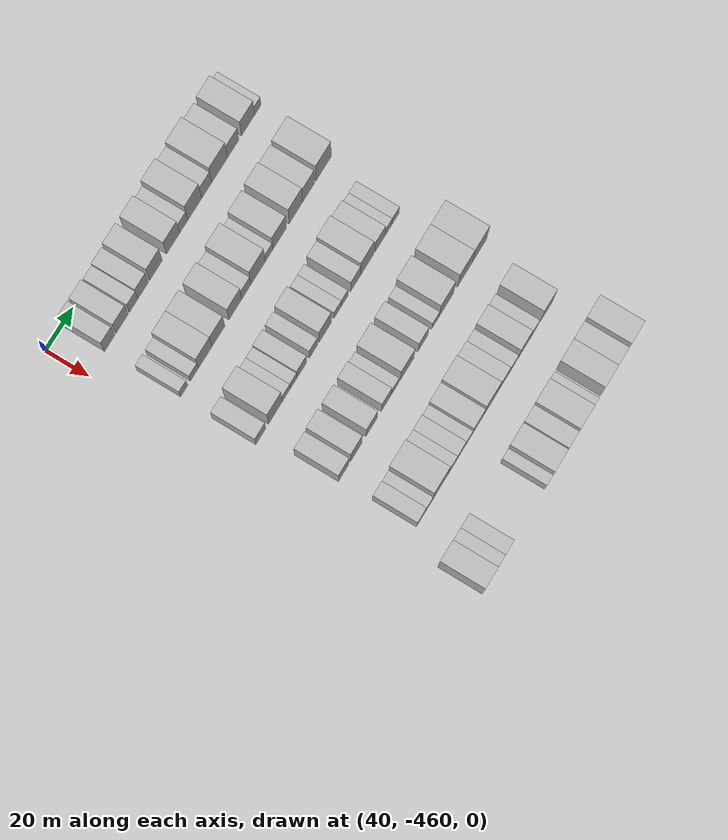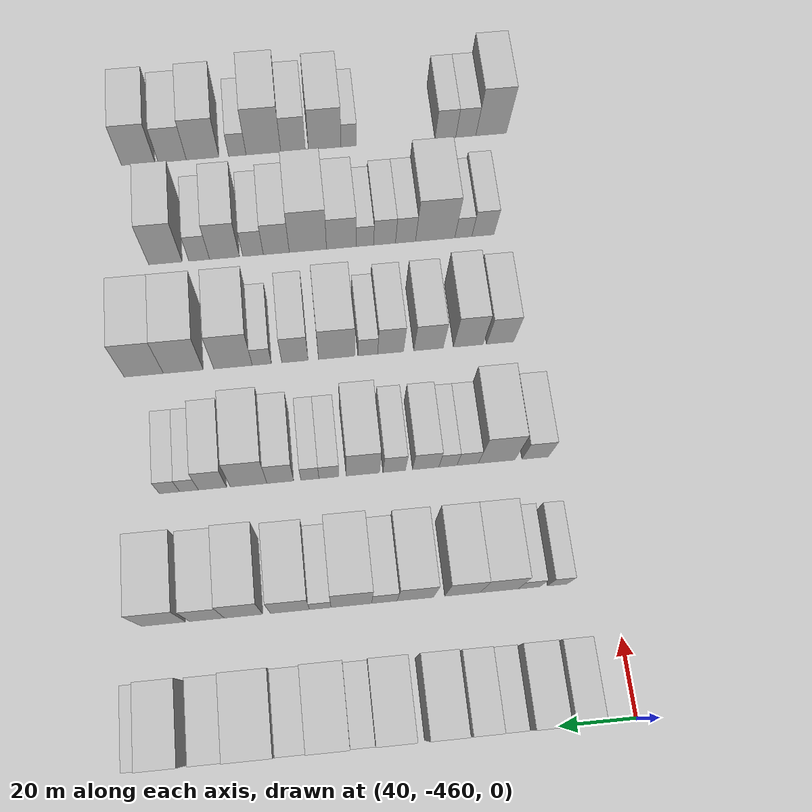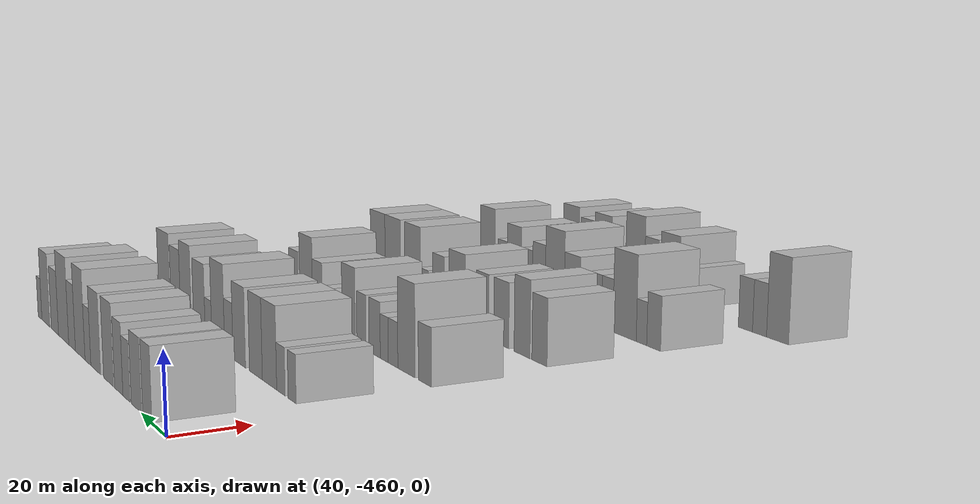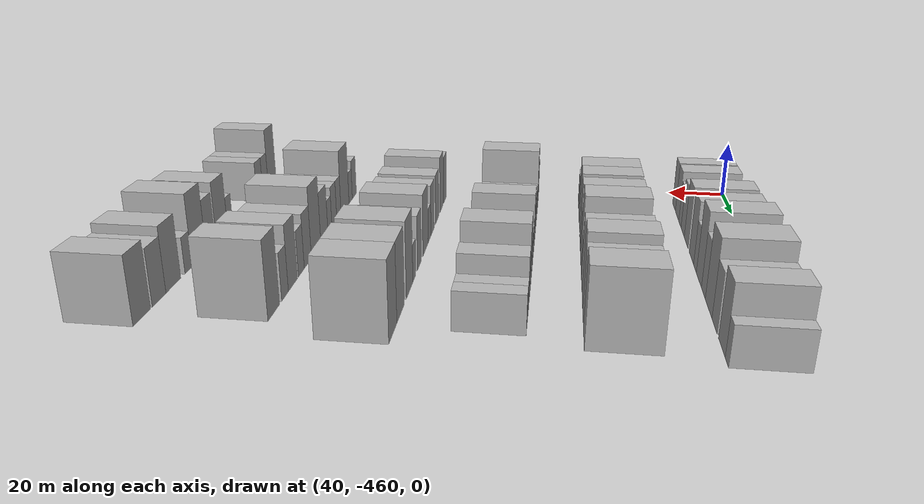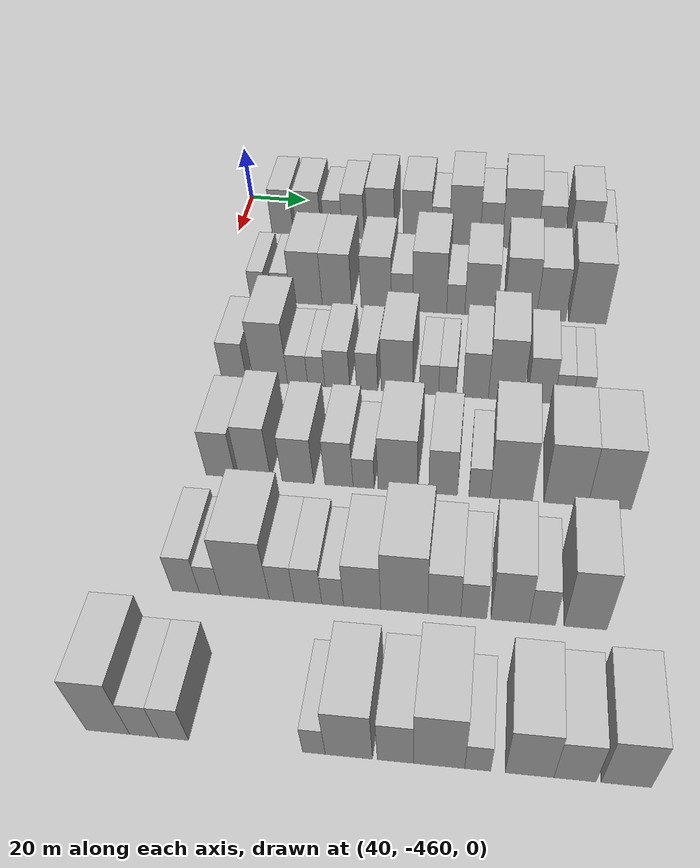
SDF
<sdf version="1.6">
 <world name="default">
  <model name="building_14">
   <static>1</static>
   <pose>50.0000 -444.6101 0 0.000000 0.000000 0.000000</pose>
   <link name="link">
    <pose>0 0 9.00 0 0 0</pose>
    <collision name="collision"><geometry><box><size>20.0000 7.5320 18.0000</size></box></geometry></collision>
    <visual name="visual">
     <cast_shadows>0</cast_shadows>
     <geometry><box><size>20.0000 7.5320 18.0000</size></box></geometry>
     <material>
      <script>
       <uri>model://HANNAS_wall/materials/scripts</uri>
       <uri>model://HANNAS_wall/materials/textures</uri>
       <name>vrc/HANNAS_wall</name>
      </script>
     </material>
    </visual>
   </link>
  </model>
  <model name="building_15">
   <static>1</static>
   <pose>50.0000 -435.4569 0 0.000000 0.000000 0.000000</pose>
   <link name="link">
    <pose>0 0 9.00 0 0 0</pose>
    <collision name="collision"><geometry><box><size>20.0000 8.7743 18.0000</size></box></geometry></collision>
    <visual name="visual">
     <cast_shadows>0</cast_shadows>
     <geometry><box><size>20.0000 8.7743 18.0000</size></box></geometry>
     <material>
      <script>
       <uri>model://HANNAS_wall/materials/scripts</uri>
       <uri>model://HANNAS_wall/materials/textures</uri>
       <name>vrc/HANNAS_wall</name>
      </script>
     </material>
    </visual>
   </link>
  </model>
  <model name="building_16">
   <static>1</static>
   <pose>50.0000 -426.8989 0 0.000000 0.000000 0.000000</pose>
   <link name="link">
    <pose>0 0 7.50 0 0 0</pose>
    <collision name="collision"><geometry><box><size>20.0000 6.3419 15.0000</size></box></geometry></collision>
    <visual name="visual">
     <cast_shadows>0</cast_shadows>
     <geometry><box><size>20.0000 6.3419 15.0000</size></box></geometry>
     <material>
      <script>
       <uri>model://HANNAS_wall/materials/scripts</uri>
       <uri>model://HANNAS_wall/materials/textures</uri>
       <name>vrc/HANNAS_wall</name>
      </script>
     </material>
    </visual>
   </link>
  </model>
  <model name="building_17">
   <static>1</static>
   <pose>50.0000 -419.9059 0 0.000000 0.000000 0.000000</pose>
   <link name="link">
    <pose>0 0 9.00 0 0 0</pose>
    <collision name="collision"><geometry><box><size>20.0000 7.6440 18.0000</size></box></geometry></collision>
    <visual name="visual">
     <cast_shadows>0</cast_shadows>
     <geometry><box><size>20.0000 7.6440 18.0000</size></box></geometry>
     <material>
      <script>
       <uri>model://HANNAS_wall/materials/scripts</uri>
       <uri>model://HANNAS_wall/materials/textures</uri>
       <name>vrc/HANNAS_wall</name>
      </script>
     </material>
    </visual>
   </link>
  </model>
  <model name="building_18">
   <static>1</static>
   <pose>50.0000 -410.3458 0 0.000000 0.000000 0.000000</pose>
   <link name="link">
    <pose>0 0 10.50 0 0 0</pose>
    <collision name="collision"><geometry><box><size>20.0000 9.4763 21.0000</size></box></geometry></collision>
    <visual name="visual">
     <cast_shadows>0</cast_shadows>
     <geometry><box><size>20.0000 9.4763 21.0000</size></box></geometry>
     <material>
      <script>
       <uri>model://HANNAS_wall/materials/scripts</uri>
       <uri>model://HANNAS_wall/materials/textures</uri>
       <name>vrc/HANNAS_wall</name>
      </script>
     </material>
    </visual>
   </link>
  </model>
  <model name="building_19">
   <static>1</static>
   <pose>50.0000 -397.7008 0 0.000000 0.000000 0.000000</pose>
   <link name="link">
    <pose>0 0 10.50 0 0 0</pose>
    <collision name="collision"><geometry><box><size>20.0000 9.8136 21.0000</size></box></geometry></collision>
    <visual name="visual">
     <cast_shadows>0</cast_shadows>
     <geometry><box><size>20.0000 9.8136 21.0000</size></box></geometry>
     <material>
      <script>
       <uri>model://HANNAS_wall/materials/scripts</uri>
       <uri>model://HANNAS_wall/materials/textures</uri>
       <name>vrc/HANNAS_wall</name>
      </script>
     </material>
    </visual>
   </link>
  </model>
  <model name="building_20">
   <static>1</static>
   <pose>50.0000 -389.7556 0 0.000000 0.000000 0.000000</pose>
   <link name="link">
    <pose>0 0 7.50 0 0 0</pose>
    <collision name="collision"><geometry><box><size>20.0000 6.0767 15.0000</size></box></geometry></collision>
    <visual name="visual">
     <cast_shadows>0</cast_shadows>
     <geometry><box><size>20.0000 6.0767 15.0000</size></box></geometry>
     <material>
      <script>
       <uri>model://HANNAS_wall/materials/scripts</uri>
       <uri>model://HANNAS_wall/materials/textures</uri>
       <name>vrc/HANNAS_wall</name>
      </script>
     </material>
    </visual>
   </link>
  </model>
  <model name="building_21">
   <static>1</static>
   <pose>50.0000 -381.5165 0 0.000000 0.000000 0.000000</pose>
   <link name="link">
    <pose>0 0 12.00 0 0 0</pose>
    <collision name="collision"><geometry><box><size>20.0000 10.4015 24.0000</size></box></geometry></collision>
    <visual name="visual">
     <cast_shadows>0</cast_shadows>
     <geometry><box><size>20.0000 10.4015 24.0000</size></box></geometry>
     <material>
      <script>
       <uri>model://HANNAS_wall/materials/scripts</uri>
       <uri>model://HANNAS_wall/materials/textures</uri>
       <name>vrc/HANNAS_wall</name>
      </script>
     </material>
    </visual>
   </link>
  </model>
  <model name="building_22">
   <static>1</static>
   <pose>50.0000 -372.5683 0 0.000000 0.000000 0.000000</pose>
   <link name="link">
    <pose>0 0 9.00 0 0 0</pose>
    <collision name="collision"><geometry><box><size>20.0000 7.4949 18.0000</size></box></geometry></collision>
    <visual name="visual">
     <cast_shadows>0</cast_shadows>
     <geometry><box><size>20.0000 7.4949 18.0000</size></box></geometry>
     <material>
      <script>
       <uri>model://HANNAS_wall/materials/scripts</uri>
       <uri>model://HANNAS_wall/materials/textures</uri>
       <name>vrc/HANNAS_wall</name>
      </script>
     </material>
    </visual>
   </link>
  </model>
  <model name="building_23">
   <static>1</static>
   <pose>50.0000 -362.8879 0 0.000000 0.000000 0.000000</pose>
   <link name="link">
    <pose>0 0 12.00 0 0 0</pose>
    <collision name="collision"><geometry><box><size>20.0000 11.8658 24.0000</size></box></geometry></collision>
    <visual name="visual">
     <cast_shadows>0</cast_shadows>
     <geometry><box><size>20.0000 11.8658 24.0000</size></box></geometry>
     <material>
      <script>
       <uri>model://HANNAS_wall/materials/scripts</uri>
       <uri>model://HANNAS_wall/materials/textures</uri>
       <name>vrc/HANNAS_wall</name>
      </script>
     </material>
    </visual>
   </link>
  </model>
  <model name="building_24">
   <static>1</static>
   <pose>50.0000 -352.6305 0 0.000000 0.000000 0.000000</pose>
   <link name="link">
    <pose>0 0 9.00 0 0 0</pose>
    <collision name="collision"><geometry><box><size>20.0000 8.6490 18.0000</size></box></geometry></collision>
    <visual name="visual">
     <cast_shadows>0</cast_shadows>
     <geometry><box><size>20.0000 8.6490 18.0000</size></box></geometry>
     <material>
      <script>
       <uri>model://HANNAS_wall/materials/scripts</uri>
       <uri>model://HANNAS_wall/materials/textures</uri>
       <name>vrc/HANNAS_wall</name>
      </script>
     </material>
    </visual>
   </link>
  </model>
  <model name="building_25">
   <static>1</static>
   <pose>50.0000 -341.3067 0 0.000000 0.000000 0.000000</pose>
   <link name="link">
    <pose>0 0 10.50 0 0 0</pose>
    <collision name="collision"><geometry><box><size>20.0000 9.9986 21.0000</size></box></geometry></collision>
    <visual name="visual">
     <cast_shadows>0</cast_shadows>
     <geometry><box><size>20.0000 9.9986 21.0000</size></box></geometry>
     <material>
      <script>
       <uri>model://HANNAS_wall/materials/scripts</uri>
       <uri>model://HANNAS_wall/materials/textures</uri>
       <name>vrc/HANNAS_wall</name>
      </script>
     </material>
    </visual>
   </link>
  </model>
  <model name="building_26">
   <static>1</static>
   <pose>50.0000 -333.8798 0 0.000000 0.000000 0.000000</pose>
   <link name="link">
    <pose>0 0 6.00 0 0 0</pose>
    <collision name="collision"><geometry><box><size>20.0000 4.8552 12.0000</size></box></geometry></collision>
    <visual name="visual">
     <cast_shadows>0</cast_shadows>
     <geometry><box><size>20.0000 4.8552 12.0000</size></box></geometry>
     <material>
      <script>
       <uri>model://HANNAS_wall/materials/scripts</uri>
       <uri>model://HANNAS_wall/materials/textures</uri>
       <name>vrc/HANNAS_wall</name>
      </script>
     </material>
    </visual>
   </link>
  </model>
  <model name="building_140">
   <static>1</static>
   <pose>85.0000 -445.5207 0 0.000000 0.000000 0.000000</pose>
   <link name="link">
    <pose>0 0 6.00 0 0 0</pose>
    <collision name="collision"><geometry><box><size>20.0000 5.2897 12.0000</size></box></geometry></collision>
    <visual name="visual">
     <cast_shadows>0</cast_shadows>
     <geometry><box><size>20.0000 5.2897 12.0000</size></box></geometry>
     <material>
      <script>
       <uri>model://HANNAS_wall/materials/scripts</uri>
       <uri>model://HANNAS_wall/materials/textures</uri>
       <name>vrc/HANNAS_wall</name>
      </script>
     </material>
    </visual>
   </link>
  </model>
  <model name="building_141">
   <static>1</static>
   <pose>85.0000 -437.9712 0 0.000000 0.000000 0.000000</pose>
   <link name="link">
    <pose>0 0 6.00 0 0 0</pose>
    <collision name="collision"><geometry><box><size>20.0000 5.8092 12.0000</size></box></geometry></collision>
    <visual name="visual">
     <cast_shadows>0</cast_shadows>
     <geometry><box><size>20.0000 5.8092 12.0000</size></box></geometry>
     <material>
      <script>
       <uri>model://HANNAS_wall/materials/scripts</uri>
       <uri>model://HANNAS_wall/materials/textures</uri>
       <name>vrc/HANNAS_wall</name>
      </script>
     </material>
    </visual>
   </link>
  </model>
  <model name="building_142">
   <static>1</static>
   <pose>85.0000 -429.9765 0 0.000000 0.000000 0.000000</pose>
   <link name="link">
    <pose>0 0 10.50 0 0 0</pose>
    <collision name="collision"><geometry><box><size>20.0000 10.1802 21.0000</size></box></geometry></collision>
    <visual name="visual">
     <cast_shadows>0</cast_shadows>
     <geometry><box><size>20.0000 10.1802 21.0000</size></box></geometry>
     <material>
      <script>
       <uri>model://HANNAS_wall/materials/scripts</uri>
       <uri>model://HANNAS_wall/materials/textures</uri>
       <name>vrc/HANNAS_wall</name>
      </script>
     </material>
    </visual>
   </link>
  </model>
  <model name="building_143">
   <static>1</static>
   <pose>85.0000 -420.0992 0 0.000000 0.000000 0.000000</pose>
   <link name="link">
    <pose>0 0 10.50 0 0 0</pose>
    <collision name="collision"><geometry><box><size>20.0000 9.5745 21.0000</size></box></geometry></collision>
    <visual name="visual">
     <cast_shadows>0</cast_shadows>
     <geometry><box><size>20.0000 9.5745 21.0000</size></box></geometry>
     <material>
      <script>
       <uri>model://HANNAS_wall/materials/scripts</uri>
       <uri>model://HANNAS_wall/materials/textures</uri>
       <name>vrc/HANNAS_wall</name>
      </script>
     </material>
    </visual>
   </link>
  </model>
  <model name="building_144">
   <static>1</static>
   <pose>85.0000 -407.4506 0 0.000000 0.000000 0.000000</pose>
   <link name="link">
    <pose>0 0 10.50 0 0 0</pose>
    <collision name="collision"><geometry><box><size>20.0000 9.7227 21.0000</size></box></geometry></collision>
    <visual name="visual">
     <cast_shadows>0</cast_shadows>
     <geometry><box><size>20.0000 9.7227 21.0000</size></box></geometry>
     <material>
      <script>
       <uri>model://HANNAS_wall/materials/scripts</uri>
       <uri>model://HANNAS_wall/materials/textures</uri>
       <name>vrc/HANNAS_wall</name>
      </script>
     </material>
    </visual>
   </link>
  </model>
  <model name="building_145">
   <static>1</static>
   <pose>85.0000 -399.1968 0 0.000000 0.000000 0.000000</pose>
   <link name="link">
    <pose>0 0 7.50 0 0 0</pose>
    <collision name="collision"><geometry><box><size>20.0000 6.7851 15.0000</size></box></geometry></collision>
    <visual name="visual">
     <cast_shadows>0</cast_shadows>
     <geometry><box><size>20.0000 6.7851 15.0000</size></box></geometry>
     <material>
      <script>
       <uri>model://HANNAS_wall/materials/scripts</uri>
       <uri>model://HANNAS_wall/materials/textures</uri>
       <name>vrc/HANNAS_wall</name>
      </script>
     </material>
    </visual>
   </link>
  </model>
  <model name="building_146">
   <static>1</static>
   <pose>85.0000 -390.4260 0 0.000000 0.000000 0.000000</pose>
   <link name="link">
    <pose>0 0 12.00 0 0 0</pose>
    <collision name="collision"><geometry><box><size>20.0000 10.7563 24.0000</size></box></geometry></collision>
    <visual name="visual">
     <cast_shadows>0</cast_shadows>
     <geometry><box><size>20.0000 10.7563 24.0000</size></box></geometry>
     <material>
      <script>
       <uri>model://HANNAS_wall/materials/scripts</uri>
       <uri>model://HANNAS_wall/materials/textures</uri>
       <name>vrc/HANNAS_wall</name>
      </script>
     </material>
    </visual>
   </link>
  </model>
  <model name="building_147">
   <static>1</static>
   <pose>85.0000 -382.2025 0 0.000000 0.000000 0.000000</pose>
   <link name="link">
    <pose>0 0 6.00 0 0 0</pose>
    <collision name="collision"><geometry><box><size>20.0000 5.6907 12.0000</size></box></geometry></collision>
    <visual name="visual">
     <cast_shadows>0</cast_shadows>
     <geometry><box><size>20.0000 5.6907 12.0000</size></box></geometry>
     <material>
      <script>
       <uri>model://HANNAS_wall/materials/scripts</uri>
       <uri>model://HANNAS_wall/materials/textures</uri>
       <name>vrc/HANNAS_wall</name>
      </script>
     </material>
    </visual>
   </link>
  </model>
  <model name="building_148">
   <static>1</static>
   <pose>85.0000 -374.1956 0 0.000000 0.000000 0.000000</pose>
   <link name="link">
    <pose>0 0 10.50 0 0 0</pose>
    <collision name="collision"><geometry><box><size>20.0000 10.3230 21.0000</size></box></geometry></collision>
    <visual name="visual">
     <cast_shadows>0</cast_shadows>
     <geometry><box><size>20.0000 10.3230 21.0000</size></box></geometry>
     <material>
      <script>
       <uri>model://HANNAS_wall/materials/scripts</uri>
       <uri>model://HANNAS_wall/materials/textures</uri>
       <name>vrc/HANNAS_wall</name>
      </script>
     </material>
    </visual>
   </link>
  </model>
  <model name="building_149">
   <static>1</static>
   <pose>85.0000 -361.9479 0 0.000000 0.000000 0.000000</pose>
   <link name="link">
    <pose>0 0 12.00 0 0 0</pose>
    <collision name="collision"><geometry><box><size>20.0000 10.1725 24.0000</size></box></geometry></collision>
    <visual name="visual">
     <cast_shadows>0</cast_shadows>
     <geometry><box><size>20.0000 10.1725 24.0000</size></box></geometry>
     <material>
      <script>
       <uri>model://HANNAS_wall/materials/scripts</uri>
       <uri>model://HANNAS_wall/materials/textures</uri>
       <name>vrc/HANNAS_wall</name>
      </script>
     </material>
    </visual>
   </link>
  </model>
  <model name="building_150">
   <static>1</static>
   <pose>85.0000 -352.2804 0 0.000000 0.000000 0.000000</pose>
   <link name="link">
    <pose>0 0 10.50 0 0 0</pose>
    <collision name="collision"><geometry><box><size>20.0000 9.1624 21.0000</size></box></geometry></collision>
    <visual name="visual">
     <cast_shadows>0</cast_shadows>
     <geometry><box><size>20.0000 9.1624 21.0000</size></box></geometry>
     <material>
      <script>
       <uri>model://HANNAS_wall/materials/scripts</uri>
       <uri>model://HANNAS_wall/materials/textures</uri>
       <name>vrc/HANNAS_wall</name>
      </script>
     </material>
    </visual>
   </link>
  </model>
  <model name="building_151">
   <static>1</static>
   <pose>85.0000 -340.9019 0 0.000000 0.000000 0.000000</pose>
   <link name="link">
    <pose>0 0 12.00 0 0 0</pose>
    <collision name="collision"><geometry><box><size>20.0000 11.5946 24.0000</size></box></geometry></collision>
    <visual name="visual">
     <cast_shadows>0</cast_shadows>
     <geometry><box><size>20.0000 11.5946 24.0000</size></box></geometry>
     <material>
      <script>
       <uri>model://HANNAS_wall/materials/scripts</uri>
       <uri>model://HANNAS_wall/materials/textures</uri>
       <name>vrc/HANNAS_wall</name>
      </script>
     </material>
    </visual>
   </link>
  </model>
  <model name="building_263">
   <static>1</static>
   <pose>120.0000 -445.2329 0 0.000000 0.000000 0.000000</pose>
   <link name="link">
    <pose>0 0 7.50 0 0 0</pose>
    <collision name="collision"><geometry><box><size>20.0000 7.4023 15.0000</size></box></geometry></collision>
    <visual name="visual">
     <cast_shadows>0</cast_shadows>
     <geometry><box><size>20.0000 7.4023 15.0000</size></box></geometry>
     <material>
      <script>
       <uri>model://HANNAS_wall/materials/scripts</uri>
       <uri>model://HANNAS_wall/materials/textures</uri>
       <name>vrc/HANNAS_wall</name>
      </script>
     </material>
    </visual>
   </link>
  </model>
  <model name="building_264">
   <static>1</static>
   <pose>120.0000 -434.3917 0 0.000000 0.000000 0.000000</pose>
   <link name="link">
    <pose>0 0 12.00 0 0 0</pose>
    <collision name="collision"><geometry><box><size>20.0000 10.2801 24.0000</size></box></geometry></collision>
    <visual name="visual">
     <cast_shadows>0</cast_shadows>
     <geometry><box><size>20.0000 10.2801 24.0000</size></box></geometry>
     <material>
      <script>
       <uri>model://HANNAS_wall/materials/scripts</uri>
       <uri>model://HANNAS_wall/materials/textures</uri>
       <name>vrc/HANNAS_wall</name>
      </script>
     </material>
    </visual>
   </link>
  </model>
  <model name="building_265">
   <static>1</static>
   <pose>120.0000 -426.2650 0 0.000000 0.000000 0.000000</pose>
   <link name="link">
    <pose>0 0 6.00 0 0 0</pose>
    <collision name="collision"><geometry><box><size>20.0000 5.9733 12.0000</size></box></geometry></collision>
    <visual name="visual">
     <cast_shadows>0</cast_shadows>
     <geometry><box><size>20.0000 5.9733 12.0000</size></box></geometry>
     <material>
      <script>
       <uri>model://HANNAS_wall/materials/scripts</uri>
       <uri>model://HANNAS_wall/materials/textures</uri>
       <name>vrc/HANNAS_wall</name>
      </script>
     </material>
    </visual>
   </link>
  </model>
  <model name="building_266">
   <static>1</static>
   <pose>120.0000 -420.7470 0 0.000000 0.000000 0.000000</pose>
   <link name="link">
    <pose>0 0 6.00 0 0 0</pose>
    <collision name="collision"><geometry><box><size>20.0000 5.0626 12.0000</size></box></geometry></collision>
    <visual name="visual">
     <cast_shadows>0</cast_shadows>
     <geometry><box><size>20.0000 5.0626 12.0000</size></box></geometry>
     <material>
      <script>
       <uri>model://HANNAS_wall/materials/scripts</uri>
       <uri>model://HANNAS_wall/materials/textures</uri>
       <name>vrc/HANNAS_wall</name>
      </script>
     </material>
    </visual>
   </link>
  </model>
  <model name="building_267">
   <static>1</static>
   <pose>120.0000 -414.5420 0 0.000000 0.000000 0.000000</pose>
   <link name="link">
    <pose>0 0 7.50 0 0 0</pose>
    <collision name="collision"><geometry><box><size>20.0000 7.3475 15.0000</size></box></geometry></collision>
    <visual name="visual">
     <cast_shadows>0</cast_shadows>
     <geometry><box><size>20.0000 7.3475 15.0000</size></box></geometry>
     <material>
      <script>
       <uri>model://HANNAS_wall/materials/scripts</uri>
       <uri>model://HANNAS_wall/materials/textures</uri>
       <name>vrc/HANNAS_wall</name>
      </script>
     </material>
    </visual>
   </link>
  </model>
  <model name="building_268">
   <static>1</static>
   <pose>120.0000 -405.7520 0 0.000000 0.000000 0.000000</pose>
   <link name="link">
    <pose>0 0 7.50 0 0 0</pose>
    <collision name="collision"><geometry><box><size>20.0000 6.2324 15.0000</size></box></geometry></collision>
    <visual name="visual">
     <cast_shadows>0</cast_shadows>
     <geometry><box><size>20.0000 6.2324 15.0000</size></box></geometry>
     <material>
      <script>
       <uri>model://HANNAS_wall/materials/scripts</uri>
       <uri>model://HANNAS_wall/materials/textures</uri>
       <name>vrc/HANNAS_wall</name>
      </script>
     </material>
    </visual>
   </link>
  </model>
  <model name="building_269">
   <static>1</static>
   <pose>120.0000 -397.0178 0 0.000000 0.000000 0.000000</pose>
   <link name="link">
    <pose>0 0 10.50 0 0 0</pose>
    <collision name="collision"><geometry><box><size>20.0000 9.2360 21.0000</size></box></geometry></collision>
    <visual name="visual">
     <cast_shadows>0</cast_shadows>
     <geometry><box><size>20.0000 9.2360 21.0000</size></box></geometry>
     <material>
      <script>
       <uri>model://HANNAS_wall/materials/scripts</uri>
       <uri>model://HANNAS_wall/materials/textures</uri>
       <name>vrc/HANNAS_wall</name>
      </script>
     </material>
    </visual>
   </link>
  </model>
  <model name="building_270">
   <static>1</static>
   <pose>120.0000 -387.6266 0 0.000000 0.000000 0.000000</pose>
   <link name="link">
    <pose>0 0 6.00 0 0 0</pose>
    <collision name="collision"><geometry><box><size>20.0000 5.5464 12.0000</size></box></geometry></collision>
    <visual name="visual">
     <cast_shadows>0</cast_shadows>
     <geometry><box><size>20.0000 5.5464 12.0000</size></box></geometry>
     <material>
      <script>
       <uri>model://HANNAS_wall/materials/scripts</uri>
       <uri>model://HANNAS_wall/materials/textures</uri>
       <name>vrc/HANNAS_wall</name>
      </script>
     </material>
    </visual>
   </link>
  </model>
  <model name="building_271">
   <static>1</static>
   <pose>120.0000 -382.3575 0 0.000000 0.000000 0.000000</pose>
   <link name="link">
    <pose>0 0 6.00 0 0 0</pose>
    <collision name="collision"><geometry><box><size>20.0000 4.9918 12.0000</size></box></geometry></collision>
    <visual name="visual">
     <cast_shadows>0</cast_shadows>
     <geometry><box><size>20.0000 4.9918 12.0000</size></box></geometry>
     <material>
      <script>
       <uri>model://HANNAS_wall/materials/scripts</uri>
       <uri>model://HANNAS_wall/materials/textures</uri>
       <name>vrc/HANNAS_wall</name>
      </script>
     </material>
    </visual>
   </link>
  </model>
  <model name="building_272">
   <static>1</static>
   <pose>120.0000 -374.1757 0 0.000000 0.000000 0.000000</pose>
   <link name="link">
    <pose>0 0 9.00 0 0 0</pose>
    <collision name="collision"><geometry><box><size>20.0000 7.3718 18.0000</size></box></geometry></collision>
    <visual name="visual">
     <cast_shadows>0</cast_shadows>
     <geometry><box><size>20.0000 7.3718 18.0000</size></box></geometry>
     <material>
      <script>
       <uri>model://HANNAS_wall/materials/scripts</uri>
       <uri>model://HANNAS_wall/materials/textures</uri>
       <name>vrc/HANNAS_wall</name>
      </script>
     </material>
    </visual>
   </link>
  </model>
  <model name="building_273">
   <static>1</static>
   <pose>120.0000 -365.4239 0 0.000000 0.000000 0.000000</pose>
   <link name="link">
    <pose>0 0 12.00 0 0 0</pose>
    <collision name="collision"><geometry><box><size>20.0000 10.1319 24.0000</size></box></geometry></collision>
    <visual name="visual">
     <cast_shadows>0</cast_shadows>
     <geometry><box><size>20.0000 10.1319 24.0000</size></box></geometry>
     <material>
      <script>
       <uri>model://HANNAS_wall/materials/scripts</uri>
       <uri>model://HANNAS_wall/materials/textures</uri>
       <name>vrc/HANNAS_wall</name>
      </script>
     </material>
    </visual>
   </link>
  </model>
  <model name="building_274">
   <static>1</static>
   <pose>120.0000 -355.4710 0 0.000000 0.000000 0.000000</pose>
   <link name="link">
    <pose>0 0 9.00 0 0 0</pose>
    <collision name="collision"><geometry><box><size>20.0000 7.7737 18.0000</size></box></geometry></collision>
    <visual name="visual">
     <cast_shadows>0</cast_shadows>
     <geometry><box><size>20.0000 7.7737 18.0000</size></box></geometry>
     <material>
      <script>
       <uri>model://HANNAS_wall/materials/scripts</uri>
       <uri>model://HANNAS_wall/materials/textures</uri>
       <name>vrc/HANNAS_wall</name>
      </script>
     </material>
    </visual>
   </link>
  </model>
  <model name="building_275">
   <static>1</static>
   <pose>120.0000 -349.0169 0 0.000000 0.000000 0.000000</pose>
   <link name="link">
    <pose>0 0 6.00 0 0 0</pose>
    <collision name="collision"><geometry><box><size>20.0000 5.1345 12.0000</size></box></geometry></collision>
    <visual name="visual">
     <cast_shadows>0</cast_shadows>
     <geometry><box><size>20.0000 5.1345 12.0000</size></box></geometry>
     <material>
      <script>
       <uri>model://HANNAS_wall/materials/scripts</uri>
       <uri>model://HANNAS_wall/materials/textures</uri>
       <name>vrc/HANNAS_wall</name>
      </script>
     </material>
    </visual>
   </link>
  </model>
  <model name="building_276">
   <static>1</static>
   <pose>120.0000 -343.6632 0 0.000000 0.000000 0.000000</pose>
   <link name="link">
    <pose>0 0 6.00 0 0 0</pose>
    <collision name="collision"><geometry><box><size>20.0000 5.5730 12.0000</size></box></geometry></collision>
    <visual name="visual">
     <cast_shadows>0</cast_shadows>
     <geometry><box><size>20.0000 5.5730 12.0000</size></box></geometry>
     <material>
      <script>
       <uri>model://HANNAS_wall/materials/scripts</uri>
       <uri>model://HANNAS_wall/materials/textures</uri>
       <name>vrc/HANNAS_wall</name>
      </script>
     </material>
    </visual>
   </link>
  </model>
  <model name="building_397">
   <static>1</static>
   <pose>155.0000 -440.6122 0 0.000000 0.000000 0.000000</pose>
   <link name="link">
    <pose>0 0 9.00 0 0 0</pose>
    <collision name="collision"><geometry><box><size>20.0000 7.9837 18.0000</size></box></geometry></collision>
    <visual name="visual">
     <cast_shadows>0</cast_shadows>
     <geometry><box><size>20.0000 7.9837 18.0000</size></box></geometry>
     <material>
      <script>
       <uri>model://HANNAS_wall/materials/scripts</uri>
       <uri>model://HANNAS_wall/materials/textures</uri>
       <name>vrc/HANNAS_wall</name>
      </script>
     </material>
    </visual>
   </link>
  </model>
  <model name="building_398">
   <static>1</static>
   <pose>155.0000 -431.2931 0 0.000000 0.000000 0.000000</pose>
   <link name="link">
    <pose>0 0 10.50 0 0 0</pose>
    <collision name="collision"><geometry><box><size>20.0000 8.6547 21.0000</size></box></geometry></collision>
    <visual name="visual">
     <cast_shadows>0</cast_shadows>
     <geometry><box><size>20.0000 8.6547 21.0000</size></box></geometry>
     <material>
      <script>
       <uri>model://HANNAS_wall/materials/scripts</uri>
       <uri>model://HANNAS_wall/materials/textures</uri>
       <name>vrc/HANNAS_wall</name>
      </script>
     </material>
    </visual>
   </link>
  </model>
  <model name="building_399">
   <static>1</static>
   <pose>155.0000 -419.6829 0 0.000000 0.000000 0.000000</pose>
   <link name="link">
    <pose>0 0 9.00 0 0 0</pose>
    <collision name="collision"><geometry><box><size>20.0000 8.5657 18.0000</size></box></geometry></collision>
    <visual name="visual">
     <cast_shadows>0</cast_shadows>
     <geometry><box><size>20.0000 8.5657 18.0000</size></box></geometry>
     <material>
      <script>
       <uri>model://HANNAS_wall/materials/scripts</uri>
       <uri>model://HANNAS_wall/materials/textures</uri>
       <name>vrc/HANNAS_wall</name>
      </script>
     </material>
    </visual>
   </link>
  </model>
  <model name="building_400">
   <static>1</static>
   <pose>155.0000 -408.6262 0 0.000000 0.000000 0.000000</pose>
   <link name="link">
    <pose>0 0 9.00 0 0 0</pose>
    <collision name="collision"><geometry><box><size>20.0000 7.5477 18.0000</size></box></geometry></collision>
    <visual name="visual">
     <cast_shadows>0</cast_shadows>
     <geometry><box><size>20.0000 7.5477 18.0000</size></box></geometry>
     <material>
      <script>
       <uri>model://HANNAS_wall/materials/scripts</uri>
       <uri>model://HANNAS_wall/materials/textures</uri>
       <name>vrc/HANNAS_wall</name>
      </script>
     </material>
    </visual>
   </link>
  </model>
  <model name="building_401">
   <static>1</static>
   <pose>155.0000 -402.0150 0 0.000000 0.000000 0.000000</pose>
   <link name="link">
    <pose>0 0 6.00 0 0 0</pose>
    <collision name="collision"><geometry><box><size>20.0000 5.6747 12.0000</size></box></geometry></collision>
    <visual name="visual">
     <cast_shadows>0</cast_shadows>
     <geometry><box><size>20.0000 5.6747 12.0000</size></box></geometry>
     <material>
      <script>
       <uri>model://HANNAS_wall/materials/scripts</uri>
       <uri>model://HANNAS_wall/materials/textures</uri>
       <name>vrc/HANNAS_wall</name>
      </script>
     </material>
    </visual>
   </link>
  </model>
  <model name="building_402">
   <static>1</static>
   <pose>155.0000 -392.9601 0 0.000000 0.000000 0.000000</pose>
   <link name="link">
    <pose>0 0 10.50 0 0 0</pose>
    <collision name="collision"><geometry><box><size>20.0000 10.4351 21.0000</size></box></geometry></collision>
    <visual name="visual">
     <cast_shadows>0</cast_shadows>
     <geometry><box><size>20.0000 10.4351 21.0000</size></box></geometry>
     <material>
      <script>
       <uri>model://HANNAS_wall/materials/scripts</uri>
       <uri>model://HANNAS_wall/materials/textures</uri>
       <name>vrc/HANNAS_wall</name>
      </script>
     </material>
    </visual>
   </link>
  </model>
  <model name="building_403">
   <static>1</static>
   <pose>155.0000 -380.9458 0 0.000000 0.000000 0.000000</pose>
   <link name="link">
    <pose>0 0 9.00 0 0 0</pose>
    <collision name="collision"><geometry><box><size>20.0000 7.5934 18.0000</size></box></geometry></collision>
    <visual name="visual">
     <cast_shadows>0</cast_shadows>
     <geometry><box><size>20.0000 7.5934 18.0000</size></box></geometry>
     <material>
      <script>
       <uri>model://HANNAS_wall/materials/scripts</uri>
       <uri>model://HANNAS_wall/materials/textures</uri>
       <name>vrc/HANNAS_wall</name>
      </script>
     </material>
    </visual>
   </link>
  </model>
  <model name="building_404">
   <static>1</static>
   <pose>155.0000 -371.3933 0 0.000000 0.000000 0.000000</pose>
   <link name="link">
    <pose>0 0 6.00 0 0 0</pose>
    <collision name="collision"><geometry><box><size>20.0000 5.5118 12.0000</size></box></geometry></collision>
    <visual name="visual">
     <cast_shadows>0</cast_shadows>
     <geometry><box><size>20.0000 5.5118 12.0000</size></box></geometry>
     <material>
      <script>
       <uri>model://HANNAS_wall/materials/scripts</uri>
       <uri>model://HANNAS_wall/materials/textures</uri>
       <name>vrc/HANNAS_wall</name>
      </script>
     </material>
    </visual>
   </link>
  </model>
  <model name="building_405">
   <static>1</static>
   <pose>155.0000 -363.0820 0 0.000000 0.000000 0.000000</pose>
   <link name="link">
    <pose>0 0 12.00 0 0 0</pose>
    <collision name="collision"><geometry><box><size>20.0000 11.1107 24.0000</size></box></geometry></collision>
    <visual name="visual">
     <cast_shadows>0</cast_shadows>
     <geometry><box><size>20.0000 11.1107 24.0000</size></box></geometry>
     <material>
      <script>
       <uri>model://HANNAS_wall/materials/scripts</uri>
       <uri>model://HANNAS_wall/materials/textures</uri>
       <name>vrc/HANNAS_wall</name>
      </script>
     </material>
    </visual>
   </link>
  </model>
  <model name="building_406">
   <static>1</static>
   <pose>155.0000 -348.8226 0 0.000000 0.000000 0.000000</pose>
   <link name="link">
    <pose>0 0 12.00 0 0 0</pose>
    <collision name="collision"><geometry><box><size>20.0000 11.4082 24.0000</size></box></geometry></collision>
    <visual name="visual">
     <cast_shadows>0</cast_shadows>
     <geometry><box><size>20.0000 11.4082 24.0000</size></box></geometry>
     <material>
      <script>
       <uri>model://HANNAS_wall/materials/scripts</uri>
       <uri>model://HANNAS_wall/materials/textures</uri>
       <name>vrc/HANNAS_wall</name>
      </script>
     </material>
    </visual>
   </link>
  </model>
  <model name="building_407">
   <static>1</static>
   <pose>155.0000 -337.4966 0 0.000000 0.000000 0.000000</pose>
   <link name="link">
    <pose>0 0 12.00 0 0 0</pose>
    <collision name="collision"><geometry><box><size>20.0000 11.2438 24.0000</size></box></geometry></collision>
    <visual name="visual">
     <cast_shadows>0</cast_shadows>
     <geometry><box><size>20.0000 11.2438 24.0000</size></box></geometry>
     <material>
      <script>
       <uri>model://HANNAS_wall/materials/scripts</uri>
       <uri>model://HANNAS_wall/materials/textures</uri>
       <name>vrc/HANNAS_wall</name>
      </script>
     </material>
    </visual>
   </link>
  </model>
  <model name="building_512">
   <static>1</static>
   <pose>190.0000 -440.6069 0 0.000000 0.000000 0.000000</pose>
   <link name="link">
    <pose>0 0 7.50 0 0 0</pose>
    <collision name="collision"><geometry><box><size>20.0000 6.7143 15.0000</size></box></geometry></collision>
    <visual name="visual">
     <cast_shadows>0</cast_shadows>
     <geometry><box><size>20.0000 6.7143 15.0000</size></box></geometry>
     <material>
      <script>
       <uri>model://HANNAS_wall/materials/scripts</uri>
       <uri>model://HANNAS_wall/materials/textures</uri>
       <name>vrc/HANNAS_wall</name>
      </script>
     </material>
    </visual>
   </link>
  </model>
  <model name="building_513">
   <static>1</static>
   <pose>190.0000 -434.6489 0 0.000000 0.000000 0.000000</pose>
   <link name="link">
    <pose>0 0 6.00 0 0 0</pose>
    <collision name="collision"><geometry><box><size>20.0000 5.2018 12.0000</size></box></geometry></collision>
    <visual name="visual">
     <cast_shadows>0</cast_shadows>
     <geometry><box><size>20.0000 5.2018 12.0000</size></box></geometry>
     <material>
      <script>
       <uri>model://HANNAS_wall/materials/scripts</uri>
       <uri>model://HANNAS_wall/materials/textures</uri>
       <name>vrc/HANNAS_wall</name>
      </script>
     </material>
    </visual>
   </link>
  </model>
  <model name="building_514">
   <static>1</static>
   <pose>190.0000 -426.0673 0 0.000000 0.000000 0.000000</pose>
   <link name="link">
    <pose>0 0 12.00 0 0 0</pose>
    <collision name="collision"><geometry><box><size>20.0000 11.9614 24.0000</size></box></geometry></collision>
    <visual name="visual">
     <cast_shadows>0</cast_shadows>
     <geometry><box><size>20.0000 11.9614 24.0000</size></box></geometry>
     <material>
      <script>
       <uri>model://HANNAS_wall/materials/scripts</uri>
       <uri>model://HANNAS_wall/materials/textures</uri>
       <name>vrc/HANNAS_wall</name>
      </script>
     </material>
    </visual>
   </link>
  </model>
  <model name="building_515">
   <static>1</static>
   <pose>190.0000 -417.0577 0 0.000000 0.000000 0.000000</pose>
   <link name="link">
    <pose>0 0 7.50 0 0 0</pose>
    <collision name="collision"><geometry><box><size>20.0000 6.0578 15.0000</size></box></geometry></collision>
    <visual name="visual">
     <cast_shadows>0</cast_shadows>
     <geometry><box><size>20.0000 6.0578 15.0000</size></box></geometry>
     <material>
      <script>
       <uri>model://HANNAS_wall/materials/scripts</uri>
       <uri>model://HANNAS_wall/materials/textures</uri>
       <name>vrc/HANNAS_wall</name>
      </script>
     </material>
    </visual>
   </link>
  </model>
  <model name="building_516">
   <static>1</static>
   <pose>190.0000 -410.6958 0 0.000000 0.000000 0.000000</pose>
   <link name="link">
    <pose>0 0 7.50 0 0 0</pose>
    <collision name="collision"><geometry><box><size>20.0000 6.6660 15.0000</size></box></geometry></collision>
    <visual name="visual">
     <cast_shadows>0</cast_shadows>
     <geometry><box><size>20.0000 6.6660 15.0000</size></box></geometry>
     <material>
      <script>
       <uri>model://HANNAS_wall/materials/scripts</uri>
       <uri>model://HANNAS_wall/materials/textures</uri>
       <name>vrc/HANNAS_wall</name>
      </script>
     </material>
    </visual>
   </link>
  </model>
  <model name="building_517">
   <static>1</static>
   <pose>190.0000 -404.7318 0 0.000000 0.000000 0.000000</pose>
   <link name="link">
    <pose>0 0 6.00 0 0 0</pose>
    <collision name="collision"><geometry><box><size>20.0000 5.2621 12.0000</size></box></geometry></collision>
    <visual name="visual">
     <cast_shadows>0</cast_shadows>
     <geometry><box><size>20.0000 5.2621 12.0000</size></box></geometry>
     <material>
      <script>
       <uri>model://HANNAS_wall/materials/scripts</uri>
       <uri>model://HANNAS_wall/materials/textures</uri>
       <name>vrc/HANNAS_wall</name>
      </script>
     </material>
    </visual>
   </link>
  </model>
  <model name="building_518">
   <static>1</static>
   <pose>190.0000 -397.6267 0 0.000000 0.000000 0.000000</pose>
   <link name="link">
    <pose>0 0 9.00 0 0 0</pose>
    <collision name="collision"><geometry><box><size>20.0000 8.9481 18.0000</size></box></geometry></collision>
    <visual name="visual">
     <cast_shadows>0</cast_shadows>
     <geometry><box><size>20.0000 8.9481 18.0000</size></box></geometry>
     <material>
      <script>
       <uri>model://HANNAS_wall/materials/scripts</uri>
       <uri>model://HANNAS_wall/materials/textures</uri>
       <name>vrc/HANNAS_wall</name>
      </script>
     </material>
    </visual>
   </link>
  </model>
  <model name="building_519">
   <static>1</static>
   <pose>190.0000 -387.5542 0 0.000000 0.000000 0.000000</pose>
   <link name="link">
    <pose>0 0 12.00 0 0 0</pose>
    <collision name="collision"><geometry><box><size>20.0000 11.1969 24.0000</size></box></geometry></collision>
    <visual name="visual">
     <cast_shadows>0</cast_shadows>
     <geometry><box><size>20.0000 11.1969 24.0000</size></box></geometry>
     <material>
      <script>
       <uri>model://HANNAS_wall/materials/scripts</uri>
       <uri>model://HANNAS_wall/materials/textures</uri>
       <name>vrc/HANNAS_wall</name>
      </script>
     </material>
    </visual>
   </link>
  </model>
  <model name="building_520">
   <static>1</static>
   <pose>190.0000 -378.0481 0 0.000000 0.000000 0.000000</pose>
   <link name="link">
    <pose>0 0 9.00 0 0 0</pose>
    <collision name="collision"><geometry><box><size>20.0000 7.8154 18.0000</size></box></geometry></collision>
    <visual name="visual">
     <cast_shadows>0</cast_shadows>
     <geometry><box><size>20.0000 7.8154 18.0000</size></box></geometry>
     <material>
      <script>
       <uri>model://HANNAS_wall/materials/scripts</uri>
       <uri>model://HANNAS_wall/materials/textures</uri>
       <name>vrc/HANNAS_wall</name>
      </script>
     </material>
    </visual>
   </link>
  </model>
  <model name="building_521">
   <static>1</static>
   <pose>190.0000 -371.0677 0 0.000000 0.000000 0.000000</pose>
   <link name="link">
    <pose>0 0 7.50 0 0 0</pose>
    <collision name="collision"><geometry><box><size>20.0000 6.1454 15.0000</size></box></geometry></collision>
    <visual name="visual">
     <cast_shadows>0</cast_shadows>
     <geometry><box><size>20.0000 6.1454 15.0000</size></box></geometry>
     <material>
      <script>
       <uri>model://HANNAS_wall/materials/scripts</uri>
       <uri>model://HANNAS_wall/materials/textures</uri>
       <name>vrc/HANNAS_wall</name>
      </script>
     </material>
    </visual>
   </link>
  </model>
  <model name="building_522">
   <static>1</static>
   <pose>190.0000 -362.5052 0 0.000000 0.000000 0.000000</pose>
   <link name="link">
    <pose>0 0 10.50 0 0 0</pose>
    <collision name="collision"><geometry><box><size>20.0000 8.9795 21.0000</size></box></geometry></collision>
    <visual name="visual">
     <cast_shadows>0</cast_shadows>
     <geometry><box><size>20.0000 8.9795 21.0000</size></box></geometry>
     <material>
      <script>
       <uri>model://HANNAS_wall/materials/scripts</uri>
       <uri>model://HANNAS_wall/materials/textures</uri>
       <name>vrc/HANNAS_wall</name>
      </script>
     </material>
    </visual>
   </link>
  </model>
  <model name="building_523">
   <static>1</static>
   <pose>190.0000 -354.9221 0 0.000000 0.000000 0.000000</pose>
   <link name="link">
    <pose>0 0 7.50 0 0 0</pose>
    <collision name="collision"><geometry><box><size>20.0000 6.1868 15.0000</size></box></geometry></collision>
    <visual name="visual">
     <cast_shadows>0</cast_shadows>
     <geometry><box><size>20.0000 6.1868 15.0000</size></box></geometry>
     <material>
      <script>
       <uri>model://HANNAS_wall/materials/scripts</uri>
       <uri>model://HANNAS_wall/materials/textures</uri>
       <name>vrc/HANNAS_wall</name>
      </script>
     </material>
    </visual>
   </link>
  </model>
  <model name="building_524">
   <static>1</static>
   <pose>190.0000 -344.8261 0 0.000000 0.000000 0.000000</pose>
   <link name="link">
    <pose>0 0 12.00 0 0 0</pose>
    <collision name="collision"><geometry><box><size>20.0000 10.0050 24.0000</size></box></geometry></collision>
    <visual name="visual">
     <cast_shadows>0</cast_shadows>
     <geometry><box><size>20.0000 10.0050 24.0000</size></box></geometry>
     <material>
      <script>
       <uri>model://HANNAS_wall/materials/scripts</uri>
       <uri>model://HANNAS_wall/materials/textures</uri>
       <name>vrc/HANNAS_wall</name>
      </script>
     </material>
    </visual>
   </link>
  </model>
  <model name="building_632">
   <static>1</static>
   <pose>225.0000 -448.2302 0 0.000000 0.000000 0.000000</pose>
   <link name="link">
    <pose>0 0 12.00 0 0 0</pose>
    <collision name="collision"><geometry><box><size>20.0000 9.6599 24.0000</size></box></geometry></collision>
    <visual name="visual">
     <cast_shadows>0</cast_shadows>
     <geometry><box><size>20.0000 9.6599 24.0000</size></box></geometry>
     <material>
      <script>
       <uri>model://HANNAS_wall/materials/scripts</uri>
       <uri>model://HANNAS_wall/materials/textures</uri>
       <name>vrc/HANNAS_wall</name>
      </script>
     </material>
    </visual>
   </link>
  </model>
  <model name="building_633">
   <static>1</static>
   <pose>225.0000 -440.2138 0 0.000000 0.000000 0.000000</pose>
   <link name="link">
    <pose>0 0 7.50 0 0 0</pose>
    <collision name="collision"><geometry><box><size>20.0000 6.3729 15.0000</size></box></geometry></collision>
    <visual name="visual">
     <cast_shadows>0</cast_shadows>
     <geometry><box><size>20.0000 6.3729 15.0000</size></box></geometry>
     <material>
      <script>
       <uri>model://HANNAS_wall/materials/scripts</uri>
       <uri>model://HANNAS_wall/materials/textures</uri>
       <name>vrc/HANNAS_wall</name>
      </script>
     </material>
    </visual>
   </link>
  </model>
  <model name="building_634">
   <static>1</static>
   <pose>225.0000 -433.7379 0 0.000000 0.000000 0.000000</pose>
   <link name="link">
    <pose>0 0 7.50 0 0 0</pose>
    <collision name="collision"><geometry><box><size>20.0000 6.5790 15.0000</size></box></geometry></collision>
    <visual name="visual">
     <cast_shadows>0</cast_shadows>
     <geometry><box><size>20.0000 6.5790 15.0000</size></box></geometry>
     <material>
      <script>
       <uri>model://HANNAS_wall/materials/scripts</uri>
       <uri>model://HANNAS_wall/materials/textures</uri>
       <name>vrc/HANNAS_wall</name>
      </script>
     </material>
    </visual>
   </link>
  </model>
  <model name="building_635">
   <static>1</static>
   <pose>225.0000 -403.1781 0 0.000000 0.000000 0.000000</pose>
   <link name="link">
    <pose>0 0 6.00 0 0 0</pose>
    <collision name="collision"><geometry><box><size>20.0000 4.8469 12.0000</size></box></geometry></collision>
    <visual name="visual">
     <cast_shadows>0</cast_shadows>
     <geometry><box><size>20.0000 4.8469 12.0000</size></box></geometry>
     <material>
      <script>
       <uri>model://HANNAS_wall/materials/scripts</uri>
       <uri>model://HANNAS_wall/materials/textures</uri>
       <name>vrc/HANNAS_wall</name>
      </script>
     </material>
    </visual>
   </link>
  </model>
  <model name="building_636">
   <static>1</static>
   <pose>225.0000 -395.6809 0 0.000000 0.000000 0.000000</pose>
   <link name="link">
    <pose>0 0 10.50 0 0 0</pose>
    <collision name="collision"><geometry><box><size>20.0000 10.1475 21.0000</size></box></geometry></collision>
    <visual name="visual">
     <cast_shadows>0</cast_shadows>
     <geometry><box><size>20.0000 10.1475 21.0000</size></box></geometry>
     <material>
      <script>
       <uri>model://HANNAS_wall/materials/scripts</uri>
       <uri>model://HANNAS_wall/materials/textures</uri>
       <name>vrc/HANNAS_wall</name>
      </script>
     </material>
    </visual>
   </link>
  </model>
  <model name="building_637">
   <static>1</static>
   <pose>225.0000 -385.7746 0 0.000000 0.000000 0.000000</pose>
   <link name="link">
    <pose>0 0 9.00 0 0 0</pose>
    <collision name="collision"><geometry><box><size>20.0000 7.6651 18.0000</size></box></geometry></collision>
    <visual name="visual">
     <cast_shadows>0</cast_shadows>
     <geometry><box><size>20.0000 7.6651 18.0000</size></box></geometry>
     <material>
      <script>
       <uri>model://HANNAS_wall/materials/scripts</uri>
       <uri>model://HANNAS_wall/materials/textures</uri>
       <name>vrc/HANNAS_wall</name>
      </script>
     </material>
    </visual>
   </link>
  </model>
  <model name="building_638">
   <static>1</static>
   <pose>225.0000 -376.5208 0 0.000000 0.000000 0.000000</pose>
   <link name="link">
    <pose>0 0 12.00 0 0 0</pose>
    <collision name="collision"><geometry><box><size>20.0000 10.8426 24.0000</size></box></geometry></collision>
    <visual name="visual">
     <cast_shadows>0</cast_shadows>
     <geometry><box><size>20.0000 10.8426 24.0000</size></box></geometry>
     <material>
      <script>
       <uri>model://HANNAS_wall/materials/scripts</uri>
       <uri>model://HANNAS_wall/materials/textures</uri>
       <name>vrc/HANNAS_wall</name>
      </script>
     </material>
    </visual>
   </link>
  </model>
  <model name="building_639">
   <static>1</static>
   <pose>225.0000 -368.3742 0 0.000000 0.000000 0.000000</pose>
   <link name="link">
    <pose>0 0 6.00 0 0 0</pose>
    <collision name="collision"><geometry><box><size>20.0000 5.4507 12.0000</size></box></geometry></collision>
    <visual name="visual">
     <cast_shadows>0</cast_shadows>
     <geometry><box><size>20.0000 5.4507 12.0000</size></box></geometry>
     <material>
      <script>
       <uri>model://HANNAS_wall/materials/scripts</uri>
       <uri>model://HANNAS_wall/materials/textures</uri>
       <name>vrc/HANNAS_wall</name>
      </script>
     </material>
    </visual>
   </link>
  </model>
  <model name="building_640">
   <static>1</static>
   <pose>225.0000 -357.5597 0 0.000000 0.000000 0.000000</pose>
   <link name="link">
    <pose>0 0 10.50 0 0 0</pose>
    <collision name="collision"><geometry><box><size>20.0000 10.1782 21.0000</size></box></geometry></collision>
    <visual name="visual">
     <cast_shadows>0</cast_shadows>
     <geometry><box><size>20.0000 10.1782 21.0000</size></box></geometry>
     <material>
      <script>
       <uri>model://HANNAS_wall/materials/scripts</uri>
       <uri>model://HANNAS_wall/materials/textures</uri>
       <name>vrc/HANNAS_wall</name>
      </script>
     </material>
    </visual>
   </link>
  </model>
  <model name="building_641">
   <static>1</static>
   <pose>225.0000 -348.0918 0 0.000000 0.000000 0.000000</pose>
   <link name="link">
    <pose>0 0 9.00 0 0 0</pose>
    <collision name="collision"><geometry><box><size>20.0000 8.7575 18.0000</size></box></geometry></collision>
    <visual name="visual">
     <cast_shadows>0</cast_shadows>
     <geometry><box><size>20.0000 8.7575 18.0000</size></box></geometry>
     <material>
      <script>
       <uri>model://HANNAS_wall/materials/scripts</uri>
       <uri>model://HANNAS_wall/materials/textures</uri>
       <name>vrc/HANNAS_wall</name>
      </script>
     </material>
    </visual>
   </link>
  </model>
  <model name="building_642">
   <static>1</static>
   <pose>225.0000 -337.5247 0 0.000000 0.000000 0.000000</pose>
   <link name="link">
    <pose>0 0 10.50 0 0 0</pose>
    <collision name="collision"><geometry><box><size>20.0000 10.3766 21.0000</size></box></geometry></collision>
    <visual name="visual">
     <cast_shadows>0</cast_shadows>
     <geometry><box><size>20.0000 10.3766 21.0000</size></box></geometry>
     <material>
      <script>
       <uri>model://HANNAS_wall/materials/scripts</uri>
       <uri>model://HANNAS_wall/materials/textures</uri>
       <name>vrc/HANNAS_wall</name>
      </script>
     </material>
    </visual>
   </link>
  </model>
 </world>
</sdf>
